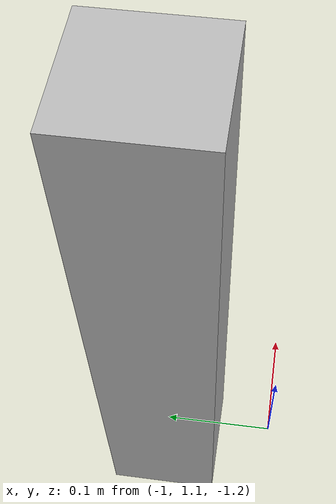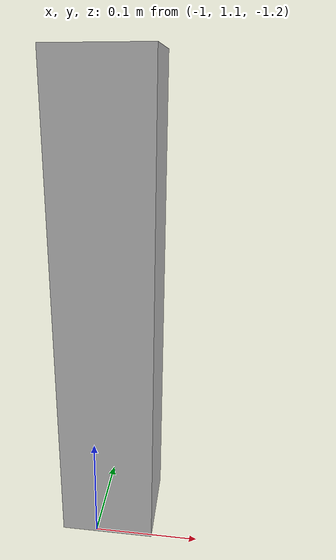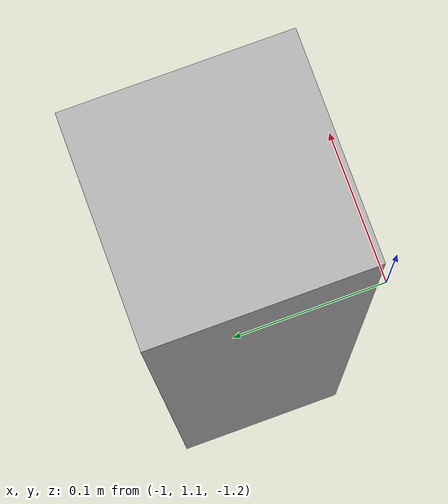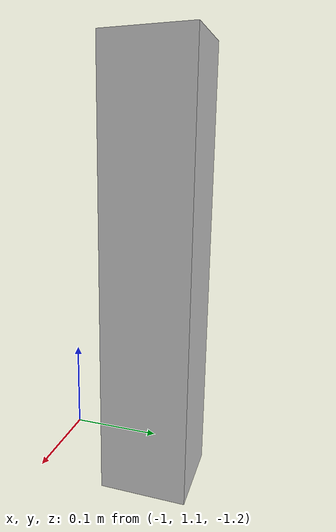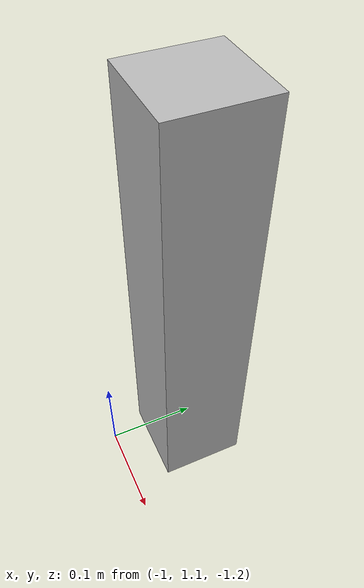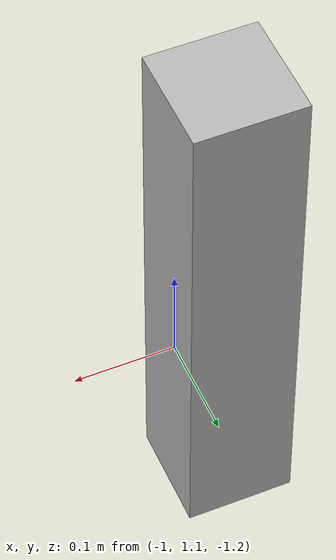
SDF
<?xml version="1.0"?>
<sdf version="1.4">
<world name="myworld">

 	<include>
		<uri>model://sun</uri>
	</include>

	<include>
		<uri>model://ground_plane</uri>
	</include>

     <model name="box_obs_1">
        <static>false</static>
          <link name='box'>
            <pose>-1 1.2 -1 0 0 0</pose>
            <collision name='collision'>
              <geometry>
                <box>
                  <size>0.1 0.1 0.5</size>
                </box>
              </geometry>
            </collision>
            <visual name='visual'>
              <geometry>
                <box>
                  <size>0.1 0.1 0.5</size>
                </box>
              </geometry>
            </visual>
          </link>
      </model>

     <model name="box_obs_2">
        <static>false</static>
          <link name='box'>
            <pose>-1 1.2 -1 0 0 0</pose>
            <collision name='collision'>
              <geometry>
                <box>
                  <size>0.1 0.1 0.5</size>
                </box>
              </geometry>
            </collision>
            <visual name='visual'>
              <geometry>
                <box>
                  <size>0.1 0.1 0.5</size>
                </box>
              </geometry>
            </visual>
          </link>
      </model>

     <model name="box_obs_3">
        <static>false</static>
          <link name='box'>
            <pose>-1 1.2 -1 0 0 0</pose>
            <collision name='collision'>
              <geometry>
                <box>
                  <size>0.1 0.1 0.5</size>
                </box>
              </geometry>
            </collision>
            <visual name='visual'>
              <geometry>
                <box>
                  <size>0.1 0.1 0.5</size>
                </box>
              </geometry>
            </visual>
          </link>
      </model>

</world>
</sdf>
